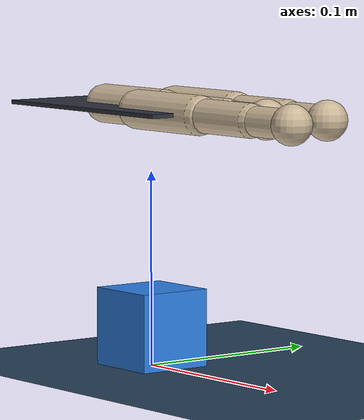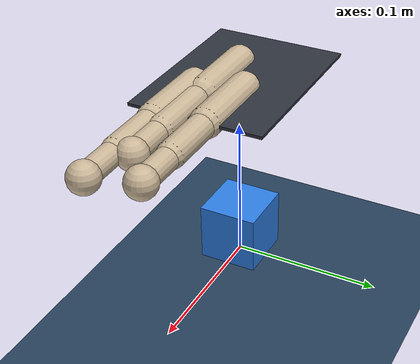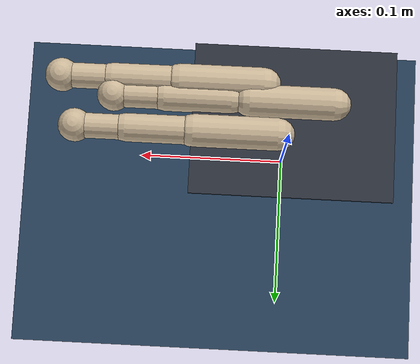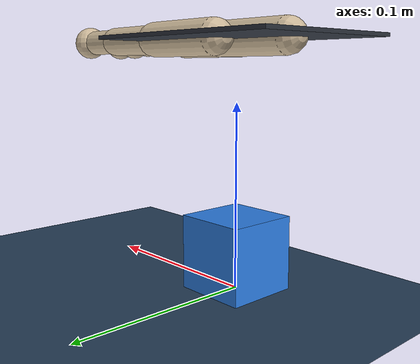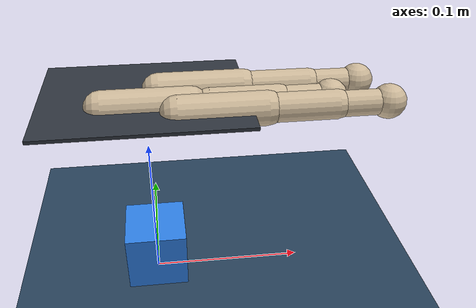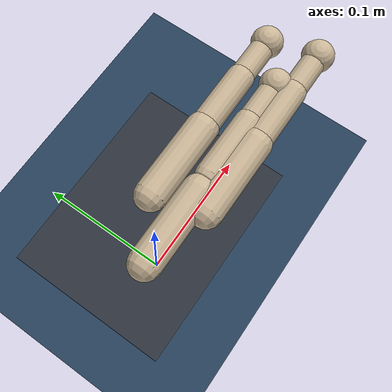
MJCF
<mujoco model="scene_cube_tp0d0063p0d0162p0d0105_ip0d0087n0d0222p0d0000_mp0d0182p0d0078p0d0000">
  <compiler angle="radian" autolimits="true" />
  <option timestep="0.002" gravity="0 0 -9.81" integrator="implicitfast" />
  <visual>
    <headlight ambient=".4 .4 .4" diffuse=".8 .8 .8" specular="0.1 0.1 0.1" />
    <map znear=".01" />
    <quality shadowsize="2048" />
    <global elevation="-15" />
  </visual>
  <default>
    <geom friction="1.8 0.15 0.01" solref="0.006 1" solimp="0.97 0.995 0.0005" />
    <motor ctrlrange="-1 1" ctrllimited="true" />
    <default class="pose">
      <joint damping="2.0" armature="0.01" />
      <position kp="4000" kv="100" forcerange="-1000 1000" />
    </default>
    <default class="ctrl">
      <joint damping="0.5" armature="0.001" />
      <position kp="30" kv="0.5" gear="1" forcerange="-10 10" ctrlrange="-1 1" />
    </default>
  </default>
  <asset>
    <texture type="skybox" builtin="gradient" rgb1="0.3 0.5 0.7" rgb2="0 0 0" width="512" height="3072" />
    <texture type="2d" name="groundplane" builtin="checker" mark="edge" rgb1="0.2 0.3 0.4" rgb2="0.1 0.2 0.3" markrgb="0.8 0.8 0.8" width="300" height="300" />
    <material name="groundplane" texture="groundplane" texuniform="true" texrepeat="5 5" reflectance="0.2" />
    <texture name="grid" type="2d" builtin="checker" rgb1="0.15 0.15 0.15" rgb2="0.25 0.25 0.25" width="256" height="256" />
    <material name="table_mat" texture="grid" texrepeat="3 3" reflectance="0.2" />
    <material name="palm_mat" rgba="0.18 0.2 0.24 1" />
    <material name="finger_mat" rgba="0.8 0.72 0.6 1" />
    <material name="object_mat" rgba="0.18 0.5 0.9 1" />
  </asset>
  <worldbody>
    <light pos="0 0 1.5" dir="0 0 -1" directional="true" diffuse=".6 .6 .6" specular=".2 .2 .2" />
    <light pos="0.5 0.5 1.0" dir="-1 -1 -1" directional="true" diffuse=".4 .4 .4" specular=".1 .1 .1" />
    <geom name="floor" type="plane" size="1.5 1.5 0.1" material="groundplane" />
    <body name="cube" pos="0.000000 0.000000 0.020000">
      <freejoint />
      <geom type="box" size="0.020000 0.020000 0.020000" density="500" material="object_mat" friction="2.4 0.2 0.02" />
    </body>
    <body gravcomp="1" name="palm_pose" pos="0 0 0.134">
      <joint class="pose" name="palm_px" type="slide" axis="1 0 0" range="-0.20 0.20" />
      <joint class="pose" name="palm_py" type="slide" axis="0 1 0" range="-0.20 0.20" />
      <joint class="pose" name="palm_pz" type="slide" axis="0 0 1" range="-0.15 0.35" />
      <joint class="pose" name="palm_rx" type="hinge" axis="1 0 0" range="-1.57 1.57" />
      <joint class="pose" name="palm_ry" type="hinge" axis="0 1 0" range="-1.57 1.57" />
      <joint class="pose" name="palm_rz" type="hinge" axis="0 0 1" range="-3.14 3.14" />
      <geom type="box" size="0.06 0.045 0.001" material="palm_mat" />
      <body name="thumb_mount" pos="-0.023668 -0.011818 0">
        <inertial pos="0 0 0" mass="0.001" diaginertia="1e-6 1e-6 1e-6" />
        <body name="thumb_yaw_frame">
          <inertial pos="0 0 0" mass="0.001" diaginertia="1e-6 1e-6 1e-6" />
          <joint class="ctrl" name="thumb_yaw" type="hinge" axis="1 0 0" range="-1.1 1.1" />
          <body name="thumb_mcp_frame">
            <joint class="ctrl" name="thumb_mcp" type="hinge" axis="0 1 0" range="0 3.14" />
            <geom type="capsule" fromto="0 0 0 0.05 0 0" size="0.010" material="finger_mat" />
            <body name="thumb_len_frame" pos="0.060455 0 0">
              <geom type="capsule" fromto="0 0 0 0.04 0 0" size="0.0085" material="finger_mat" />
              <body name="thumb_pip_frame" pos="0.04 0 0">
                <joint class="ctrl" name="thumb_pip" type="hinge" axis="0 1 0" range="-1.2 0.5" />
                <geom type="capsule" fromto="0 0 0 0.03 0 0" size="0.0075" material="finger_mat" />
                <body name="thumb_tip" pos="0.03 0 0">
                  <geom type="sphere" size="0.010" material="finger_mat" friction="2.4 0.2 0.02" />
                  <geom type="sphere" pos="0 0.004 0" size="0.005" material="finger_mat" friction="2.4 0.2 0.02" />
                  <geom type="sphere" pos="0 -0.004 0" size="0.005" material="finger_mat" friction="2.4 0.2 0.02" />
                </body>
              </body>
            </body>
          </body>
        </body>
      </body>
      <body name="index_mount" pos="0.008715 0.007768 0">
        <inertial pos="0 0 0" mass="0.001" diaginertia="1e-6 1e-6 1e-6" />
        <body name="index_yaw_frame">
          <inertial pos="0 0 0" mass="0.001" diaginertia="1e-6 1e-6 1e-6" />
          <joint class="ctrl" name="index_yaw" type="hinge" axis="1 0 0" range="-1.1 1.1" />
          <body name="index_mcp_frame">
            <joint class="ctrl" name="index_mcp" type="hinge" axis="0 1 0" range="0 2.5" />
            <geom type="capsule" fromto="0 0 0 0.05 0 0" size="0.010" material="finger_mat" />
            <body name="index_len_frame" pos="0.05 0 0">
              <geom type="capsule" fromto="0 0 0 0.04 0 0" size="0.0085" material="finger_mat" />
              <body name="index_pip_frame" pos="0.04 0 0">
                <joint class="ctrl" name="index_pip" type="hinge" axis="0 1 0" range="-1.2 1.57" />
                <geom type="capsule" fromto="0 0 0 0.03 0 0" size="0.0075" material="finger_mat" />
                <body name="index_tip" pos="0.03 0 0">
                  <geom type="sphere" size="0.010" material="finger_mat" friction="2.4 0.2 0.02" />
                  <geom type="sphere" pos="0 0.004 0" size="0.005" material="finger_mat" friction="2.4 0.2 0.02" />
                  <geom type="sphere" pos="0 -0.004 0" size="0.005" material="finger_mat" friction="2.4 0.2 0.02" />
                </body>
              </body>
            </body>
          </body>
        </body>
      </body>
      <body name="middle_mount" pos="0.018187 -0.022186 0">
        <inertial pos="0 0 0" mass="0.001" diaginertia="1e-6 1e-6 1e-6" />
        <body name="middle_yaw_frame">
          <inertial pos="0 0 0" mass="0.001" diaginertia="1e-6 1e-6 1e-6" />
          <joint class="ctrl" name="middle_yaw" type="hinge" axis="1 0 0" range="-1.1 1.1" />
          <body name="middle_mcp_frame">
            <joint class="ctrl" name="middle_mcp" type="hinge" axis="0 1 0" range="0 2.5" />
            <geom type="capsule" fromto="0 0 0 0.05 0 0" size="0.010" material="finger_mat" />
            <body name="middle_len_frame" pos="0.05 0 0">
              <geom type="capsule" fromto="0 0 0 0.04 0 0" size="0.0085" material="finger_mat" />
              <body name="middle_pip_frame" pos="0.04 0 0">
                <joint class="ctrl" name="middle_pip" type="hinge" axis="0 1 0" range="-1.2 1.57" />
                <geom type="capsule" fromto="0 0 0 0.03 0 0" size="0.0075" material="finger_mat" />
                <body name="middle_tip" pos="0.03 0 0">
                  <geom type="sphere" size="0.010" material="finger_mat" friction="2.4 0.2 0.02" />
                  <geom type="sphere" pos="0 0.004 0" size="0.005" material="finger_mat" friction="2.4 0.2 0.02" />
                  <geom type="sphere" pos="0 -0.004 0" size="0.005" material="finger_mat" friction="2.4 0.2 0.02" />
                </body>
              </body>
            </body>
          </body>
        </body>
      </body>
    </body>
  </worldbody>
  <actuator>
    <position class="pose" name="a_palm_px" joint="palm_px" ctrlrange="-0.20 0.20" />
    <position class="pose" name="a_palm_py" joint="palm_py" ctrlrange="-0.20 0.20" />
    <position class="pose" name="a_palm_pz" joint="palm_pz" ctrlrange="-0.15 0.35" />
    <position class="pose" name="a_palm_rx" joint="palm_rx" ctrlrange="-1.57 1.57" />
    <position class="pose" name="a_palm_ry" joint="palm_ry" ctrlrange="-1.57 1.57" />
    <position class="pose" name="a_palm_rz" joint="palm_rz" ctrlrange="-3.14 3.14" />
    <position class="ctrl" name="a_thumb_yaw" joint="thumb_yaw" ctrlrange="-1.1 1.1" />
    <position class="ctrl" name="a_thumb_mcp" joint="thumb_mcp" ctrlrange="0 3.14" />
    <position class="ctrl" name="a_thumb_pip" joint="thumb_pip" ctrlrange="-1.2 0.5" />
    <position class="ctrl" name="a_index_yaw" joint="index_yaw" ctrlrange="-1.1 1.1" />
    <position class="ctrl" name="a_index_mcp" joint="index_mcp" ctrlrange="0 2.5" />
    <position class="ctrl" name="a_index_pip" joint="index_pip" ctrlrange="-1.2 1.57" />
    <position class="ctrl" name="a_middle_yaw" joint="middle_yaw" ctrlrange="-1.1 1.1" />
    <position class="ctrl" name="a_middle_mcp" joint="middle_mcp" ctrlrange="0 2.5" />
    <position class="ctrl" name="a_middle_pip" joint="middle_pip" ctrlrange="-1.2 1.57" />
  </actuator>
  <keyframe>
    <key name="open" qpos="&#10;        0 0 0.02 1 0 0 0 0.02 0 0 0 0 0 0 2 -0.707 0 1.25 1 0 1.25 1&#10;      " ctrl="&#10;        0.02 0 0 0 0 0 0 2 -0.707 0 1.25 1 0 1.25 1&#10;      " />
    <key name="foundational" qpos="&#10;        0.0009833456531 0.008052595859 0.02081350788 0.9911379128 -0.004837265657 -0.02223741024 -0.1308729773 0.01956181739 -0.0004663755749 -1.765732112e-05 -5.049910275e-05 7.013918688e-05 3.112080245e-05 0.1864150357 1.918161006 -0.885335735 -0.08020434983 1.456816994 0.6517658037 0.09502259078 1.362531217 0.8847533057&#10;      " ctrl="&#10;        0.02 0 0 0 0 0 0.1439691919 1.443316898 -0.9610501064 -0.215976786 1.623557916 0.689442342 0.2859654497 1.510907961 0.913208068&#10;      " />
  </keyframe>
</mujoco>
